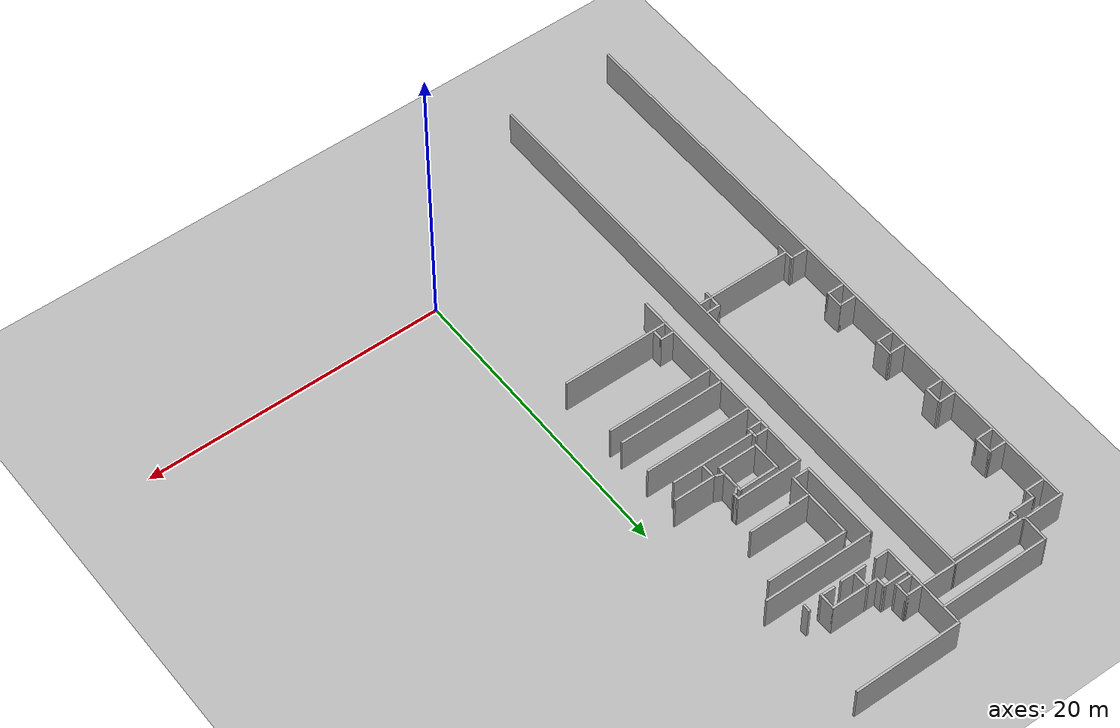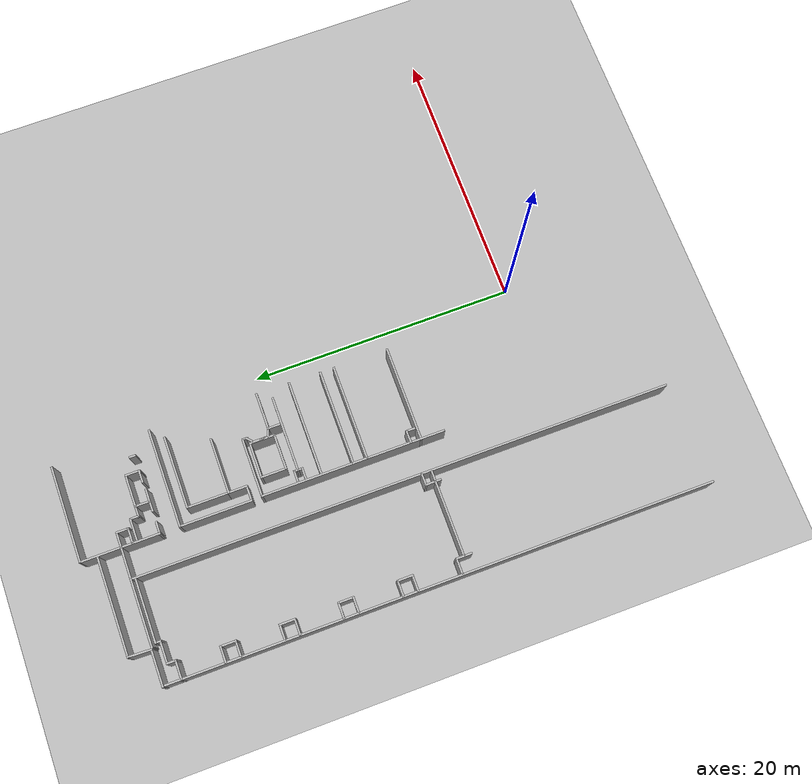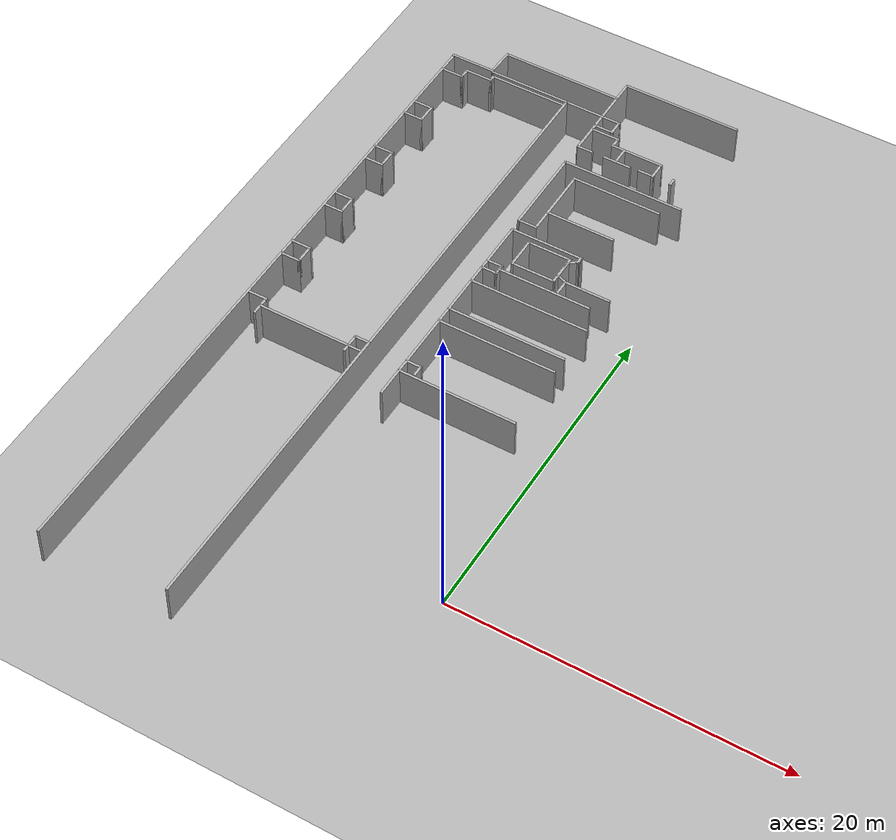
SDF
<sdf version="1.9">
 <world name="tsudanuma2-3">
  <model name="ground_plane">
   <static>true</static>
   <link name="link">
    <collision name="collision">
     <geometry><plane><normal>0 0 1</normal><size>100 100</size></plane></geometry>
     <surface>
      <contact><collide_bitmask>65535</collide_bitmask></contact>
      <friction><ode><mu>100</mu><mu2>50</mu2></ode></friction>
     </surface>
    </collision>
    <visual name="visual">
     <cast_shadows>false</cast_shadows>
     <geometry><plane><normal>0 0 1</normal><size>100 100</size></plane></geometry>
     <material>
      <ambient>0.5 0.5 0.5 1</ambient>
      <diffuse>0.7 0.7 0.7 1</diffuse>
      <specular>0.1 0.1 0.1 1</specular>
     </material>
    </visual>
   </link>
  </model>
  <model name="Tsudanuma_2-3-without_door">
   <pose>11.859500000000001 12.3796 0 0 0 0</pose>
   <link name="Wall_0">
    <collision name="Wall_0_Collision">
     <geometry><box><size>41.115000000000002 0.14999999999999999 2.5</size></box></geometry>
     <pose>0 0 1.25 0 0 0</pose>
    </collision>
    <visual name="Wall_0_Visual">
     <pose>0 0 1.25 0 0 0</pose>
     <geometry><box><size>41.115000000000002 0.14999999999999999 2.5</size></box></geometry>
     <material>
      <ambient>0.5 0.5 0.5 1</ambient>
      <diffuse>0.7 0.7 0.7 1</diffuse>
      <specular>0.1 0.1 0.1 1</specular>
     </material>
     <meta><layer>0</layer></meta>
    </visual>
    <pose>-30.8385 -0.074690000000000006 0 0 0 -1.5708</pose>
   </link>
   <link name="Wall_102">
    <collision name="Wall_102_Collision">
     <geometry><box><size>1.25 0.14999999999999999 2.5</size></box></geometry>
     <pose>0 0 1.25 0 0 0</pose>
    </collision>
    <visual name="Wall_102_Visual">
     <pose>0 0 1.25 0 0 0</pose>
     <geometry><box><size>1.25 0.14999999999999999 2.5</size></box></geometry>
     <material>
      <ambient>0.5 0.5 0.5 1</ambient>
      <diffuse>0.7 0.7 0.7 1</diffuse>
      <specular>0.1 0.1 0.1 1</specular>
     </material>
     <meta><layer>0</layer></meta>
    </visual>
    <pose>-20.270800000000001 10.816700000000001 0 0 0 0</pose>
   </link>
   <link name="Wall_103">
    <collision name="Wall_103_Collision">
     <geometry><box><size>1.5 0.14999999999999999 2.5</size></box></geometry>
     <pose>0 0 1.25 0 0 0</pose>
    </collision>
    <visual name="Wall_103_Visual">
     <pose>0 0 1.25 0 0 0</pose>
     <geometry><box><size>1.5 0.14999999999999999 2.5</size></box></geometry>
     <material>
      <ambient>0.5 0.5 0.5 1</ambient>
      <diffuse>0.7 0.7 0.7 1</diffuse>
      <specular>0.1 0.1 0.1 1</specular>
     </material>
     <meta><layer>0</layer></meta>
    </visual>
    <pose>-19.720800000000001 11.4917 0 0 0 1.5708</pose>
   </link>
   <link name="Wall_104">
    <collision name="Wall_104_Collision">
     <geometry><box><size>4.25 0.14999999999999999 2.5</size></box></geometry>
     <pose>0 0 1.25 0 0 0</pose>
    </collision>
    <visual name="Wall_104_Visual">
     <pose>0 0 1.25 0 0 0</pose>
     <geometry><box><size>4.25 0.14999999999999999 2.5</size></box></geometry>
     <material>
      <ambient>0.5 0.5 0.5 1</ambient>
      <diffuse>0.7 0.7 0.7 1</diffuse>
      <specular>0.1 0.1 0.1 1</specular>
     </material>
     <meta><layer>0</layer></meta>
    </visual>
    <pose>-17.6708 12.166700000000001 0 0 0 0</pose>
   </link>
   <link name="Wall_106">
    <collision name="Wall_106_Collision">
     <geometry><box><size>3.25 0.14999999999999999 2.5</size></box></geometry>
     <pose>0 0 1.25 0 0 0</pose>
    </collision>
    <visual name="Wall_106_Visual">
     <pose>0 0 1.25 0 0 0</pose>
     <geometry><box><size>3.25 0.14999999999999999 2.5</size></box></geometry>
     <material>
      <ambient>0.5 0.5 0.5 1</ambient>
      <diffuse>0.7 0.7 0.7 1</diffuse>
      <specular>0.1 0.1 0.1 1</specular>
     </material>
     <meta><layer>0</layer></meta>
    </visual>
    <pose>-19.720800000000001 13.716699999999999 0 0 0 1.5708</pose>
   </link>
   <link name="Wall_107">
    <collision name="Wall_107_Collision">
     <geometry><box><size>5.5 0.14999999999999999 2.5</size></box></geometry>
     <pose>0 0 1.25 0 0 0</pose>
    </collision>
    <visual name="Wall_107_Visual">
     <pose>0 0 1.25 0 0 0</pose>
     <geometry><box><size>5.5 0.14999999999999999 2.5</size></box></geometry>
     <material>
      <ambient>0.5 0.5 0.5 1</ambient>
      <diffuse>0.7 0.7 0.7 1</diffuse>
      <specular>0.1 0.1 0.1 1</specular>
     </material>
     <meta><layer>0</layer></meta>
    </visual>
    <pose>-17.0458 15.2667 0 0 0 0</pose>
   </link>
   <link name="Wall_114">
    <collision name="Wall_114_Collision">
     <geometry><box><size>7.5 0.14999999999999999 2.5</size></box></geometry>
     <pose>0 0 1.25 0 0 0</pose>
    </collision>
    <visual name="Wall_114_Visual">
     <pose>0 0 1.25 0 0 0</pose>
     <geometry><box><size>7.5 0.14999999999999999 2.5</size></box></geometry>
     <material>
      <ambient>0.5 0.5 0.5 1</ambient>
      <diffuse>0.7 0.7 0.7 1</diffuse>
      <specular>0.1 0.1 0.1 1</specular>
     </material>
     <meta><layer>0</layer></meta>
    </visual>
    <pose>-17.145800000000001 16.166699999999999 0 0 0 0</pose>
   </link>
   <link name="Wall_116">
    <collision name="Wall_116_Collision">
     <geometry><box><size>0.71550800000000003 0.14999999999999999 2.5</size></box></geometry>
     <pose>0 0 1.25 0 0 0</pose>
    </collision>
    <visual name="Wall_116_Visual">
     <pose>0 0 1.25 0 0 0</pose>
     <geometry><box><size>0.71550800000000003 0.14999999999999999 2.5</size></box></geometry>
     <material>
      <ambient>0.5 0.5 0.5 1</ambient>
      <diffuse>0.7 0.7 0.7 1</diffuse>
      <specular>0.1 0.1 0.1 1</specular>
     </material>
     <meta><layer>0</layer></meta>
    </visual>
    <pose>-16.6297 9.5424100000000003 0 0 0 0.73186499999999999</pose>
   </link>
   <link name="Wall_118">
    <collision name="Wall_118_Collision">
     <geometry><box><size>0.5 0.14999999999999999 2.5</size></box></geometry>
     <pose>0 0 1.25 0 0 0</pose>
    </collision>
    <visual name="Wall_118_Visual">
     <pose>0 0 1.25 0 0 0</pose>
     <geometry><box><size>0.5 0.14999999999999999 2.5</size></box></geometry>
     <material>
      <ambient>0.5 0.5 0.5 1</ambient>
      <diffuse>0.7 0.7 0.7 1</diffuse>
      <specular>0.1 0.1 0.1 1</specular>
     </material>
     <meta><layer>0</layer></meta>
    </visual>
    <pose>-16.4194 9.8491700000000009 0 0 0 1.5708</pose>
   </link>
   <link name="Wall_119">
    <collision name="Wall_119_Collision">
     <geometry><box><size>4.5 0.14999999999999999 2.5</size></box></geometry>
     <pose>0 0 1.25 0 0 0</pose>
    </collision>
    <visual name="Wall_119_Visual">
     <pose>0 0 1.25 0 0 0</pose>
     <geometry><box><size>4.5 0.14999999999999999 2.5</size></box></geometry>
     <material>
      <ambient>0.5 0.5 0.5 1</ambient>
      <diffuse>0.7 0.7 0.7 1</diffuse>
      <specular>0.1 0.1 0.1 1</specular>
     </material>
     <meta><layer>0</layer></meta>
    </visual>
    <pose>-18.5944 10.0242 0 0 0 3.1415899999999999</pose>
   </link>
   <link name="Wall_120">
    <collision name="Wall_120_Collision">
     <geometry><box><size>14 0.14999999999999999 2.5</size></box></geometry>
     <pose>0 0 1.25 0 0 0</pose>
    </collision>
    <visual name="Wall_120_Visual">
     <pose>0 0 1.25 0 0 0</pose>
     <geometry><box><size>14 0.14999999999999999 2.5</size></box></geometry>
     <material>
      <ambient>0.5 0.5 0.5 1</ambient>
      <diffuse>0.7 0.7 0.7 1</diffuse>
      <specular>0.1 0.1 0.1 1</specular>
     </material>
     <meta><layer>0</layer></meta>
    </visual>
    <pose>-20.769400000000001 3.09917 0 0 0 -1.5708</pose>
   </link>
   <link name="Wall_123">
    <collision name="Wall_123_Collision">
     <geometry><box><size>2.82925 0.14999999999999999 2.5</size></box></geometry>
     <pose>0 0 1.25 0 0 0</pose>
    </collision>
    <visual name="Wall_123_Visual">
     <pose>0 0 1.25 0 0 0</pose>
     <geometry><box><size>2.82925 0.14999999999999999 2.5</size></box></geometry>
     <material>
      <ambient>0.5 0.5 0.5 1</ambient>
      <diffuse>0.7 0.7 0.7 1</diffuse>
      <specular>0.1 0.1 0.1 1</specular>
     </material>
     <meta><layer>0</layer></meta>
    </visual>
    <pose>-14.9297 8.0241699999999998 0 0 0 -3.1415899999999999</pose>
   </link>
   <link name="Wall_124">
    <collision name="Wall_124_Collision">
     <geometry><box><size>0.76504799999999995 0.14999999999999999 2.5</size></box></geometry>
     <pose>0 0 1.25 0 0 0</pose>
    </collision>
    <visual name="Wall_124_Visual">
     <pose>0 0 1.25 0 0 0</pose>
     <geometry><box><size>0.76504799999999995 0.14999999999999999 2.5</size></box></geometry>
     <material>
      <ambient>0.5 0.5 0.5 1</ambient>
      <diffuse>0.7 0.7 0.7 1</diffuse>
      <specular>0.1 0.1 0.1 1</specular>
     </material>
     <meta><layer>0</layer></meta>
    </visual>
    <pose>-16.5547 8.1388200000000008 0 0 0 2.7595700000000001</pose>
   </link>
   <link name="Wall_128">
    <collision name="Wall_128_Collision">
     <geometry><box><size>1.25 0.14999999999999999 2.5</size></box></geometry>
     <pose>0 0 1.25 0 0 0</pose>
    </collision>
    <visual name="Wall_128_Visual">
     <pose>0 0 1.25 0 0 0</pose>
     <geometry><box><size>1.25 0.14999999999999999 2.5</size></box></geometry>
     <material>
      <ambient>0.5 0.5 0.5 1</ambient>
      <diffuse>0.7 0.7 0.7 1</diffuse>
      <specular>0.1 0.1 0.1 1</specular>
     </material>
     <meta><layer>0</layer></meta>
    </visual>
    <pose>-16.8401 8.8034599999999994 0 0 0 1.5708</pose>
   </link>
   <link name="Wall_130">
    <collision name="Wall_130_Collision">
     <geometry><box><size>7.25 0.14999999999999999 2.5</size></box></geometry>
     <pose>0 0 1.25 0 0 0</pose>
    </collision>
    <visual name="Wall_130_Visual">
     <pose>0 0 1.25 0 0 0</pose>
     <geometry><box><size>7.25 0.14999999999999999 2.5</size></box></geometry>
     <material>
      <ambient>0.5 0.5 0.5 1</ambient>
      <diffuse>0.7 0.7 0.7 1</diffuse>
      <specular>0.1 0.1 0.1 1</specular>
     </material>
     <meta><layer>0</layer></meta>
    </visual>
    <pose>-17.230499999999999 -2.0692699999999999 0 0 0 0</pose>
   </link>
   <link name="Wall_132">
    <collision name="Wall_132_Collision">
     <geometry><box><size>1 0.14999999999999999 2.5</size></box></geometry>
     <pose>0 0 1.25 0 0 0</pose>
    </collision>
    <visual name="Wall_132_Visual">
     <pose>0 0 1.25 0 0 0</pose>
     <geometry><box><size>1 0.14999999999999999 2.5</size></box></geometry>
     <material>
      <ambient>0.5 0.5 0.5 1</ambient>
      <diffuse>0.7 0.7 0.7 1</diffuse>
      <specular>0.1 0.1 0.1 1</specular>
     </material>
     <meta><layer>0</layer></meta>
    </visual>
    <pose>-20.317499999999999 -1.2914300000000001 0 0 0 0</pose>
   </link>
   <link name="Wall_133">
    <collision name="Wall_133_Collision">
     <geometry><box><size>0.75 0.14999999999999999 2.5</size></box></geometry>
     <pose>0 0 1.25 0 0 0</pose>
    </collision>
    <visual name="Wall_133_Visual">
     <pose>0 0 1.25 0 0 0</pose>
     <geometry><box><size>0.75 0.14999999999999999 2.5</size></box></geometry>
     <material>
      <ambient>0.5 0.5 0.5 1</ambient>
      <diffuse>0.7 0.7 0.7 1</diffuse>
      <specular>0.1 0.1 0.1 1</specular>
     </material>
     <meta><layer>0</layer></meta>
    </visual>
    <pose>-19.892499999999998 -1.5914299999999999 0 0 0 -1.5708</pose>
   </link>
   <link name="Wall_18">
    <collision name="Wall_18_Collision">
     <geometry><box><size>7.25 0.14999999999999999 2.5</size></box></geometry>
     <pose>0 0 1.25 0 0 0</pose>
    </collision>
    <visual name="Wall_18_Visual">
     <pose>0 0 1.25 0 0 0</pose>
     <geometry><box><size>7.25 0.14999999999999999 2.5</size></box></geometry>
     <material>
      <ambient>0.5 0.5 0.5 1</ambient>
      <diffuse>0.7 0.7 0.7 1</diffuse>
      <specular>0.1 0.1 0.1 1</specular>
     </material>
     <meta><layer>0</layer></meta>
    </visual>
    <pose>-17.222100000000001 23.510000000000002 0 0 0 3.1415899999999999</pose>
   </link>
   <link name="Wall_22">
    <collision name="Wall_22_Collision">
     <geometry><box><size>2.7999999999999998 0.14999999999999999 2.5</size></box></geometry>
     <pose>0 0 1.25 0 0 0</pose>
    </collision>
    <visual name="Wall_22_Visual">
     <pose>0 0 1.25 0 0 0</pose>
     <geometry><box><size>2.7999999999999998 0.14999999999999999 2.5</size></box></geometry>
     <material>
      <ambient>0.5 0.5 0.5 1</ambient>
      <diffuse>0.7 0.7 0.7 1</diffuse>
      <specular>0.1 0.1 0.1 1</specular>
     </material>
     <meta><layer>0</layer></meta>
    </visual>
    <pose>-29.553000000000001 20.584599999999998 0 0 0 3.1415899999999999</pose>
   </link>
   <link name="Wall_32">
    <collision name="Wall_32_Collision">
     <geometry><box><size>40.75 0.14999999999999999 2.5</size></box></geometry>
     <pose>0 0 1.25 0 0 0</pose>
    </collision>
    <visual name="Wall_32_Visual">
     <pose>0 0 1.25 0 0 0</pose>
     <geometry><box><size>40.75 0.14999999999999999 2.5</size></box></geometry>
     <material>
      <ambient>0.5 0.5 0.5 1</ambient>
      <diffuse>0.7 0.7 0.7 1</diffuse>
      <specular>0.1 0.1 0.1 1</specular>
     </material>
     <meta><layer>0</layer></meta>
    </visual>
    <pose>-23.1721 0.089962 0 0 0 1.5708</pose>
   </link>
   <link name="Wall_38">
    <collision name="Wall_38_Collision">
     <geometry><box><size>1 0.14999999999999999 2.5</size></box></geometry>
     <pose>0 0 1.25 0 0 0</pose>
    </collision>
    <visual name="Wall_38_Visual">
     <pose>0 0 1.25 0 0 0</pose>
     <geometry><box><size>1 0.14999999999999999 2.5</size></box></geometry>
     <material>
      <ambient>0.5 0.5 0.5 1</ambient>
      <diffuse>0.7 0.7 0.7 1</diffuse>
      <specular>0.1 0.1 0.1 1</specular>
     </material>
     <meta><layer>0</layer></meta>
    </visual>
    <pose>-20.3843 17.646999999999998 0 0 0 3.1415899999999999</pose>
   </link>
   <link name="Wall_39">
    <collision name="Wall_39_Collision">
     <geometry><box><size>3 0.14999999999999999 2.5</size></box></geometry>
     <pose>0 0 1.25 0 0 0</pose>
    </collision>
    <visual name="Wall_39_Visual">
     <pose>0 0 1.25 0 0 0</pose>
     <geometry><box><size>3 0.14999999999999999 2.5</size></box></geometry>
     <material>
      <ambient>0.5 0.5 0.5 1</ambient>
      <diffuse>0.7 0.7 0.7 1</diffuse>
      <specular>0.1 0.1 0.1 1</specular>
     </material>
     <meta><layer>0</layer></meta>
    </visual>
    <pose>-20.8093 19.071999999999999 0 0 0 1.5708</pose>
   </link>
   <link name="Wall_40">
    <collision name="Wall_40_Collision">
     <geometry><box><size>2.4953699999999999 0.14999999999999999 2.5</size></box></geometry>
     <pose>0 0 1.25 0 0 0</pose>
    </collision>
    <visual name="Wall_40_Visual">
     <pose>0 0 1.25 0 0 0</pose>
     <geometry><box><size>2.4953699999999999 0.14999999999999999 2.5</size></box></geometry>
     <material>
      <ambient>0.5 0.5 0.5 1</ambient>
      <diffuse>0.7 0.7 0.7 1</diffuse>
      <specular>0.1 0.1 0.1 1</specular>
     </material>
     <meta><layer>0</layer></meta>
    </visual>
    <pose>-21.9819 20.5016 0 0 0 3.1376400000000002</pose>
   </link>
   <link name="Wall_42">
    <collision name="Wall_42_Collision">
     <geometry><box><size>3.0499999999999998 0.14999999999999999 2.5</size></box></geometry>
     <pose>0 0 1.25 0 0 0</pose>
    </collision>
    <visual name="Wall_42_Visual">
     <pose>0 0 1.25 0 0 0</pose>
     <geometry><box><size>3.0499999999999998 0.14999999999999999 2.5</size></box></geometry>
     <material>
      <ambient>0.5 0.5 0.5 1</ambient>
      <diffuse>0.7 0.7 0.7 1</diffuse>
      <specular>0.1 0.1 0.1 1</specular>
     </material>
     <meta><layer>0</layer></meta>
    </visual>
    <pose>-20.8093 21.946999999999999 0 0 0 1.5708</pose>
   </link>
   <link name="Wall_44">
    <collision name="Wall_44_Collision">
     <geometry><box><size>1.75 0.14999999999999999 2.5</size></box></geometry>
     <pose>0 0 1.25 0 0 0</pose>
    </collision>
    <visual name="Wall_44_Visual">
     <pose>0 0 1.25 0 0 0</pose>
     <geometry><box><size>1.75 0.14999999999999999 2.5</size></box></geometry>
     <material>
      <ambient>0.5 0.5 0.5 1</ambient>
      <diffuse>0.7 0.7 0.7 1</diffuse>
      <specular>0.1 0.1 0.1 1</specular>
     </material>
     <meta><layer>0</layer></meta>
    </visual>
    <pose>-18.3034 17.646999999999998 0 0 0 0</pose>
   </link>
   <link name="Wall_470">
    <collision name="Wall_470_Collision">
     <geometry><box><size>1.25 0.14999999999999999 2.5</size></box></geometry>
     <pose>0 0 1.25 0 0 0</pose>
    </collision>
    <visual name="Wall_470_Visual">
     <pose>0 0 1.25 0 0 0</pose>
     <geometry><box><size>1.25 0.14999999999999999 2.5</size></box></geometry>
     <material>
      <ambient>0.5 0.5 0.5 1</ambient>
      <diffuse>0.7 0.7 0.7 1</diffuse>
      <specular>0.1 0.1 0.1 1</specular>
     </material>
     <meta><layer>0</layer></meta>
    </visual>
    <pose>-29.663499999999999 -1.9583999999999999 0 0 0 1.5708</pose>
   </link>
   <link name="Wall_471">
    <collision name="Wall_471_Collision">
     <geometry><box><size>1.25 0.14999999999999999 2.5</size></box></geometry>
     <pose>0 0 1.25 0 0 0</pose>
    </collision>
    <visual name="Wall_471_Visual">
     <pose>0 0 1.25 0 0 0</pose>
     <geometry><box><size>1.25 0.14999999999999999 2.5</size></box></geometry>
     <material>
      <ambient>0.5 0.5 0.5 1</ambient>
      <diffuse>0.7 0.7 0.7 1</diffuse>
      <specular>0.1 0.1 0.1 1</specular>
     </material>
     <meta><layer>0</layer></meta>
    </visual>
    <pose>-30.2135 -1.4084000000000001 0 0 0 3.1415899999999999</pose>
   </link>
   <link name="Wall_474">
    <collision name="Wall_474_Collision">
     <geometry><box><size>1.25 0.14999999999999999 2.5</size></box></geometry>
     <pose>0 0 1.25 0 0 0</pose>
    </collision>
    <visual name="Wall_474_Visual">
     <pose>0 0 1.25 0 0 0</pose>
     <geometry><box><size>1.25 0.14999999999999999 2.5</size></box></geometry>
     <material>
      <ambient>0.5 0.5 0.5 1</ambient>
      <diffuse>0.7 0.7 0.7 1</diffuse>
      <specular>0.1 0.1 0.1 1</specular>
     </material>
     <meta><layer>0</layer></meta>
    </visual>
    <pose>-30.229900000000001 1.90612 0 0 0 0</pose>
   </link>
   <link name="Wall_475">
    <collision name="Wall_475_Collision">
     <geometry><box><size>1.25 0.14999999999999999 2.5</size></box></geometry>
     <pose>0 0 1.25 0 0 0</pose>
    </collision>
    <visual name="Wall_475_Visual">
     <pose>0 0 1.25 0 0 0</pose>
     <geometry><box><size>1.25 0.14999999999999999 2.5</size></box></geometry>
     <material>
      <ambient>0.5 0.5 0.5 1</ambient>
      <diffuse>0.7 0.7 0.7 1</diffuse>
      <specular>0.1 0.1 0.1 1</specular>
     </material>
     <meta><layer>0</layer></meta>
    </visual>
    <pose>-29.6799 2.4561199999999999 0 0 0 1.5708</pose>
   </link>
   <link name="Wall_476">
    <collision name="Wall_476_Collision">
     <geometry><box><size>1.25 0.14999999999999999 2.5</size></box></geometry>
     <pose>0 0 1.25 0 0 0</pose>
    </collision>
    <visual name="Wall_476_Visual">
     <pose>0 0 1.25 0 0 0</pose>
     <geometry><box><size>1.25 0.14999999999999999 2.5</size></box></geometry>
     <material>
      <ambient>0.5 0.5 0.5 1</ambient>
      <diffuse>0.7 0.7 0.7 1</diffuse>
      <specular>0.1 0.1 0.1 1</specular>
     </material>
     <meta><layer>0</layer></meta>
    </visual>
    <pose>-30.229900000000001 3.0061200000000001 0 0 0 3.1415899999999999</pose>
   </link>
   <link name="Wall_478">
    <collision name="Wall_478_Collision">
     <geometry><box><size>1.25 0.14999999999999999 2.5</size></box></geometry>
     <pose>0 0 1.25 0 0 0</pose>
    </collision>
    <visual name="Wall_478_Visual">
     <pose>0 0 1.25 0 0 0</pose>
     <geometry><box><size>1.25 0.14999999999999999 2.5</size></box></geometry>
     <material>
      <ambient>0.5 0.5 0.5 1</ambient>
      <diffuse>0.7 0.7 0.7 1</diffuse>
      <specular>0.1 0.1 0.1 1</specular>
     </material>
     <meta><layer>0</layer></meta>
    </visual>
    <pose>-30.229900000000001 6.3041900000000002 0 0 0 0</pose>
   </link>
   <link name="Wall_479">
    <collision name="Wall_479_Collision">
     <geometry><box><size>1.25 0.14999999999999999 2.5</size></box></geometry>
     <pose>0 0 1.25 0 0 0</pose>
    </collision>
    <visual name="Wall_479_Visual">
     <pose>0 0 1.25 0 0 0</pose>
     <geometry><box><size>1.25 0.14999999999999999 2.5</size></box></geometry>
     <material>
      <ambient>0.5 0.5 0.5 1</ambient>
      <diffuse>0.7 0.7 0.7 1</diffuse>
      <specular>0.1 0.1 0.1 1</specular>
     </material>
     <meta><layer>0</layer></meta>
    </visual>
    <pose>-29.6799 6.85419 0 0 0 1.5708</pose>
   </link>
   <link name="Wall_480">
    <collision name="Wall_480_Collision">
     <geometry><box><size>1.25 0.14999999999999999 2.5</size></box></geometry>
     <pose>0 0 1.25 0 0 0</pose>
    </collision>
    <visual name="Wall_480_Visual">
     <pose>0 0 1.25 0 0 0</pose>
     <geometry><box><size>1.25 0.14999999999999999 2.5</size></box></geometry>
     <material>
      <ambient>0.5 0.5 0.5 1</ambient>
      <diffuse>0.7 0.7 0.7 1</diffuse>
      <specular>0.1 0.1 0.1 1</specular>
     </material>
     <meta><layer>0</layer></meta>
    </visual>
    <pose>-30.229900000000001 7.4041899999999998 0 0 0 3.1415899999999999</pose>
   </link>
   <link name="Wall_482">
    <collision name="Wall_482_Collision">
     <geometry><box><size>1.25 0.14999999999999999 2.5</size></box></geometry>
     <pose>0 0 1.25 0 0 0</pose>
    </collision>
    <visual name="Wall_482_Visual">
     <pose>0 0 1.25 0 0 0</pose>
     <geometry><box><size>1.25 0.14999999999999999 2.5</size></box></geometry>
     <material>
      <ambient>0.5 0.5 0.5 1</ambient>
      <diffuse>0.7 0.7 0.7 1</diffuse>
      <specular>0.1 0.1 0.1 1</specular>
     </material>
     <meta><layer>0</layer></meta>
    </visual>
    <pose>-30.238099999999999 10.620100000000001 0 0 0 0</pose>
   </link>
   <link name="Wall_483">
    <collision name="Wall_483_Collision">
     <geometry><box><size>1.25 0.14999999999999999 2.5</size></box></geometry>
     <pose>0 0 1.25 0 0 0</pose>
    </collision>
    <visual name="Wall_483_Visual">
     <pose>0 0 1.25 0 0 0</pose>
     <geometry><box><size>1.25 0.14999999999999999 2.5</size></box></geometry>
     <material>
      <ambient>0.5 0.5 0.5 1</ambient>
      <diffuse>0.7 0.7 0.7 1</diffuse>
      <specular>0.1 0.1 0.1 1</specular>
     </material>
     <meta><layer>0</layer></meta>
    </visual>
    <pose>-29.688099999999999 11.1701 0 0 0 1.5708</pose>
   </link>
   <link name="Wall_484">
    <collision name="Wall_484_Collision">
     <geometry><box><size>1.25 0.14999999999999999 2.5</size></box></geometry>
     <pose>0 0 1.25 0 0 0</pose>
    </collision>
    <visual name="Wall_484_Visual">
     <pose>0 0 1.25 0 0 0</pose>
     <geometry><box><size>1.25 0.14999999999999999 2.5</size></box></geometry>
     <material>
      <ambient>0.5 0.5 0.5 1</ambient>
      <diffuse>0.7 0.7 0.7 1</diffuse>
      <specular>0.1 0.1 0.1 1</specular>
     </material>
     <meta><layer>0</layer></meta>
    </visual>
    <pose>-30.238099999999999 11.7201 0 0 0 3.1415899999999999</pose>
   </link>
   <link name="Wall_486">
    <collision name="Wall_486_Collision">
     <geometry><box><size>1.25 0.14999999999999999 2.5</size></box></geometry>
     <pose>0 0 1.25 0 0 0</pose>
    </collision>
    <visual name="Wall_486_Visual">
     <pose>0 0 1.25 0 0 0</pose>
     <geometry><box><size>1.25 0.14999999999999999 2.5</size></box></geometry>
     <material>
      <ambient>0.5 0.5 0.5 1</ambient>
      <diffuse>0.7 0.7 0.7 1</diffuse>
      <specular>0.1 0.1 0.1 1</specular>
     </material>
     <meta><layer>0</layer></meta>
    </visual>
    <pose>-30.221699999999998 14.9359 0 0 0 0</pose>
   </link>
   <link name="Wall_487">
    <collision name="Wall_487_Collision">
     <geometry><box><size>1.25 0.14999999999999999 2.5</size></box></geometry>
     <pose>0 0 1.25 0 0 0</pose>
    </collision>
    <visual name="Wall_487_Visual">
     <pose>0 0 1.25 0 0 0</pose>
     <geometry><box><size>1.25 0.14999999999999999 2.5</size></box></geometry>
     <material>
      <ambient>0.5 0.5 0.5 1</ambient>
      <diffuse>0.7 0.7 0.7 1</diffuse>
      <specular>0.1 0.1 0.1 1</specular>
     </material>
     <meta><layer>0</layer></meta>
    </visual>
    <pose>-29.671700000000001 15.485900000000001 0 0 0 1.5708</pose>
   </link>
   <link name="Wall_488">
    <collision name="Wall_488_Collision">
     <geometry><box><size>1.25 0.14999999999999999 2.5</size></box></geometry>
     <pose>0 0 1.25 0 0 0</pose>
    </collision>
    <visual name="Wall_488_Visual">
     <pose>0 0 1.25 0 0 0</pose>
     <geometry><box><size>1.25 0.14999999999999999 2.5</size></box></geometry>
     <material>
      <ambient>0.5 0.5 0.5 1</ambient>
      <diffuse>0.7 0.7 0.7 1</diffuse>
      <specular>0.1 0.1 0.1 1</specular>
     </material>
     <meta><layer>0</layer></meta>
    </visual>
    <pose>-30.221699999999998 16.035900000000002 0 0 0 3.1415899999999999</pose>
   </link>
   <link name="Wall_49">
    <collision name="Wall_49_Collision">
     <geometry><box><size>1.75 0.14999999999999999 2.5</size></box></geometry>
     <pose>0 0 1.25 0 0 0</pose>
    </collision>
    <visual name="Wall_49_Visual">
     <pose>0 0 1.25 0 0 0</pose>
     <geometry><box><size>1.75 0.14999999999999999 2.5</size></box></geometry>
     <material>
      <ambient>0.5 0.5 0.5 1</ambient>
      <diffuse>0.7 0.7 0.7 1</diffuse>
      <specular>0.1 0.1 0.1 1</specular>
     </material>
     <meta><layer>0</layer></meta>
    </visual>
    <pose>-19.9221 19.302900000000001 0 0 0 0</pose>
   </link>
   <link name="Wall_490">
    <collision name="Wall_490_Collision">
     <geometry><box><size>1.5 0.14999999999999999 2.5</size></box></geometry>
     <pose>0 0 1.25 0 0 0</pose>
    </collision>
    <visual name="Wall_490_Visual">
     <pose>0 0 1.25 0 0 0</pose>
     <geometry><box><size>1.5 0.14999999999999999 2.5</size></box></geometry>
     <material>
      <ambient>0.5 0.5 0.5 1</ambient>
      <diffuse>0.7 0.7 0.7 1</diffuse>
      <specular>0.1 0.1 0.1 1</specular>
     </material>
     <meta><layer>0</layer></meta>
    </visual>
    <pose>-30.178899999999999 19.235299999999999 0 0 0 0</pose>
   </link>
   <link name="Wall_491">
    <collision name="Wall_491_Collision">
     <geometry><box><size>0.75 0.14999999999999999 2.5</size></box></geometry>
     <pose>0 0 1.25 0 0 0</pose>
    </collision>
    <visual name="Wall_491_Visual">
     <pose>0 0 1.25 0 0 0</pose>
     <geometry><box><size>0.75 0.14999999999999999 2.5</size></box></geometry>
     <material>
      <ambient>0.5 0.5 0.5 1</ambient>
      <diffuse>0.7 0.7 0.7 1</diffuse>
      <specular>0.1 0.1 0.1 1</specular>
     </material>
     <meta><layer>0</layer></meta>
    </visual>
    <pose>-29.503900000000002 19.535299999999999 0 0 0 1.5708</pose>
   </link>
   <link name="Wall_492">
    <collision name="Wall_492_Collision">
     <geometry><box><size>1.75 0.14999999999999999 2.5</size></box></geometry>
     <pose>0 0 1.25 0 0 0</pose>
    </collision>
    <visual name="Wall_492_Visual">
     <pose>0 0 1.25 0 0 0</pose>
     <geometry><box><size>1.75 0.14999999999999999 2.5</size></box></geometry>
     <material>
      <ambient>0.5 0.5 0.5 1</ambient>
      <diffuse>0.7 0.7 0.7 1</diffuse>
      <specular>0.1 0.1 0.1 1</specular>
     </material>
     <meta><layer>0</layer></meta>
    </visual>
    <pose>-28.703900000000001 19.8353 0 0 0 0</pose>
   </link>
   <link name="Wall_493">
    <collision name="Wall_493_Collision">
     <geometry><box><size>0.5 0.14999999999999999 2.5</size></box></geometry>
     <pose>0 0 1.25 0 0 0</pose>
    </collision>
    <visual name="Wall_493_Visual">
     <pose>0 0 1.25 0 0 0</pose>
     <geometry><box><size>0.5 0.14999999999999999 2.5</size></box></geometry>
     <material>
      <ambient>0.5 0.5 0.5 1</ambient>
      <diffuse>0.7 0.7 0.7 1</diffuse>
      <specular>0.1 0.1 0.1 1</specular>
     </material>
     <meta><layer>0</layer></meta>
    </visual>
    <pose>-27.9039 20.010300000000001 0 0 0 1.5708</pose>
   </link>
   <link name="Wall_494">
    <collision name="Wall_494_Collision">
     <geometry><box><size>4.75 0.14999999999999999 2.5</size></box></geometry>
     <pose>0 0 1.25 0 0 0</pose>
    </collision>
    <visual name="Wall_494_Visual">
     <pose>0 0 1.25 0 0 0</pose>
     <geometry><box><size>4.75 0.14999999999999999 2.5</size></box></geometry>
     <material>
      <ambient>0.5 0.5 0.5 1</ambient>
      <diffuse>0.7 0.7 0.7 1</diffuse>
      <specular>0.1 0.1 0.1 1</specular>
     </material>
     <meta><layer>0</layer></meta>
    </visual>
    <pose>-25.603899999999999 20.185300000000002 0 0 0 0</pose>
   </link>
   <link name="Wall_496">
    <collision name="Wall_496_Collision">
     <geometry><box><size>5.1109999999999998 0.14999999999999999 2.5</size></box></geometry>
     <pose>0 0 1.25 0 0 0</pose>
    </collision>
    <visual name="Wall_496_Visual">
     <pose>0 0 1.25 0 0 0</pose>
     <geometry><box><size>5.1109999999999998 0.14999999999999999 2.5</size></box></geometry>
     <material>
      <ambient>0.5 0.5 0.5 1</ambient>
      <diffuse>0.7 0.7 0.7 1</diffuse>
      <specular>0.1 0.1 0.1 1</specular>
     </material>
     <meta><layer>0</layer></meta>
    </visual>
    <pose>-25.6356 20.5062 0 0 0 3.1415899999999999</pose>
   </link>
   <link name="Wall_498">
    <collision name="Wall_498_Collision">
     <geometry><box><size>0.28616799999999998 0.14999999999999999 2.5</size></box></geometry>
     <pose>0 0 1.25 0 0 0</pose>
    </collision>
    <visual name="Wall_498_Visual">
     <pose>0 0 1.25 0 0 0</pose>
     <geometry><box><size>0.28616799999999998 0.14999999999999999 2.5</size></box></geometry>
     <material>
      <ambient>0.5 0.5 0.5 1</ambient>
      <diffuse>0.7 0.7 0.7 1</diffuse>
      <specular>0.1 0.1 0.1 1</specular>
     </material>
     <meta><layer>0</layer></meta>
    </visual>
    <pose>-28.1723 20.545400000000001 0 0 0 2.5284200000000001</pose>
   </link>
   <link name="Wall_50">
    <collision name="Wall_50_Collision">
     <geometry><box><size>0.75 0.14999999999999999 2.5</size></box></geometry>
     <pose>0 0 1.25 0 0 0</pose>
    </collision>
    <visual name="Wall_50_Visual">
     <pose>0 0 1.25 0 0 0</pose>
     <geometry><box><size>0.75 0.14999999999999999 2.5</size></box></geometry>
     <material>
      <ambient>0.5 0.5 0.5 1</ambient>
      <diffuse>0.7 0.7 0.7 1</diffuse>
      <specular>0.1 0.1 0.1 1</specular>
     </material>
     <meta><layer>0</layer></meta>
    </visual>
    <pose>-19.1221 19.0029 0 0 0 -1.5708</pose>
   </link>
   <link name="Wall_503">
    <collision name="Wall_503_Collision">
     <geometry><box><size>1 0.14999999999999999 2.5</size></box></geometry>
     <pose>0 0 1.25 0 0 0</pose>
    </collision>
    <visual name="Wall_503_Visual">
     <pose>0 0 1.25 0 0 0</pose>
     <geometry><box><size>1 0.14999999999999999 2.5</size></box></geometry>
     <material>
      <ambient>0.5 0.5 0.5 1</ambient>
      <diffuse>0.7 0.7 0.7 1</diffuse>
      <specular>0.1 0.1 0.1 1</specular>
     </material>
     <meta><layer>0</layer></meta>
    </visual>
    <pose>-23.6051 -1.22621 0 0 0 3.1415899999999999</pose>
   </link>
   <link name="Wall_504">
    <collision name="Wall_504_Collision">
     <geometry><box><size>1.25 0.14999999999999999 2.5</size></box></geometry>
     <pose>0 0 1.25 0 0 0</pose>
    </collision>
    <visual name="Wall_504_Visual">
     <pose>0 0 1.25 0 0 0</pose>
     <geometry><box><size>1.25 0.14999999999999999 2.5</size></box></geometry>
     <material>
      <ambient>0.5 0.5 0.5 1</ambient>
      <diffuse>0.7 0.7 0.7 1</diffuse>
      <specular>0.1 0.1 0.1 1</specular>
     </material>
     <meta><layer>0</layer></meta>
    </visual>
    <pose>-24.030100000000001 -1.7762100000000001 0 0 0 -1.5708</pose>
   </link>
   <link name="Wall_508">
    <collision name="Wall_508_Collision">
     <geometry><box><size>7.5 0.14999999999999999 2.5</size></box></geometry>
     <pose>0 0 1.25 0 0 0</pose>
    </collision>
    <visual name="Wall_508_Visual">
     <pose>0 0 1.25 0 0 0</pose>
     <geometry><box><size>7.5 0.14999999999999999 2.5</size></box></geometry>
     <material>
      <ambient>0.5 0.5 0.5 1</ambient>
      <diffuse>0.7 0.7 0.7 1</diffuse>
      <specular>0.1 0.1 0.1 1</specular>
     </material>
     <meta><layer>0</layer></meta>
    </visual>
    <pose>-24.487500000000001 22.255700000000001 0 0 0 3.1415899999999999</pose>
   </link>
   <link name="Wall_509">
    <collision name="Wall_509_Collision">
     <geometry><box><size>1.8223499999999999 0.14999999999999999 2.5</size></box></geometry>
     <pose>0 0 1.25 0 0 0</pose>
    </collision>
    <visual name="Wall_509_Visual">
     <pose>0 0 1.25 0 0 0</pose>
     <geometry><box><size>1.8223499999999999 0.14999999999999999 2.5</size></box></geometry>
     <material>
      <ambient>0.5 0.5 0.5 1</ambient>
      <diffuse>0.7 0.7 0.7 1</diffuse>
      <specular>0.1 0.1 0.1 1</specular>
     </material>
     <meta><layer>0</layer></meta>
    </visual>
    <pose>-28.1953 21.420100000000001 0 0 0 -1.60995</pose>
   </link>
   <link name="Wall_51">
    <collision name="Wall_51_Collision">
     <geometry><box><size>3.25 0.14999999999999999 2.5</size></box></geometry>
     <pose>0 0 1.25 0 0 0</pose>
    </collision>
    <visual name="Wall_51_Visual">
     <pose>0 0 1.25 0 0 0</pose>
     <geometry><box><size>3.25 0.14999999999999999 2.5</size></box></geometry>
     <material>
      <ambient>0.5 0.5 0.5 1</ambient>
      <diffuse>0.7 0.7 0.7 1</diffuse>
      <specular>0.1 0.1 0.1 1</specular>
     </material>
     <meta><layer>0</layer></meta>
    </visual>
    <pose>-17.572099999999999 18.7029 0 0 0 0</pose>
   </link>
   <link name="Wall_511">
    <collision name="Wall_511_Collision">
     <geometry><box><size>7.25 0.14999999999999999 2.5</size></box></geometry>
     <pose>0 0 1.25 0 0 0</pose>
    </collision>
    <visual name="Wall_511_Visual">
     <pose>0 0 1.25 0 0 0</pose>
     <geometry><box><size>7.25 0.14999999999999999 2.5</size></box></geometry>
     <material>
      <ambient>0.5 0.5 0.5 1</ambient>
      <diffuse>0.7 0.7 0.7 1</diffuse>
      <specular>0.1 0.1 0.1 1</specular>
     </material>
     <meta><layer>0</layer></meta>
    </visual>
    <pose>-17.203800000000001 3.1189800000000001 0 0 0 0</pose>
   </link>
   <link name="Wall_513">
    <collision name="Wall_513_Collision">
     <geometry><box><size>7.25 0.14999999999999999 2.5</size></box></geometry>
     <pose>0 0 1.25 0 0 0</pose>
    </collision>
    <visual name="Wall_513_Visual">
     <pose>0 0 1.25 0 0 0</pose>
     <geometry><box><size>7.25 0.14999999999999999 2.5</size></box></geometry>
     <material>
      <ambient>0.5 0.5 0.5 1</ambient>
      <diffuse>0.7 0.7 0.7 1</diffuse>
      <specular>0.1 0.1 0.1 1</specular>
     </material>
     <meta><layer>0</layer></meta>
    </visual>
    <pose>-17.203800000000001 2.0723699999999998 0 0 0 0</pose>
   </link>
   <link name="Wall_515">
    <collision name="Wall_515_Collision">
     <geometry><box><size>7.25 0.14999999999999999 2.5</size></box></geometry>
     <pose>0 0 1.25 0 0 0</pose>
    </collision>
    <visual name="Wall_515_Visual">
     <pose>0 0 1.25 0 0 0</pose>
     <geometry><box><size>7.25 0.14999999999999999 2.5</size></box></geometry>
     <material>
      <ambient>0.5 0.5 0.5 1</ambient>
      <diffuse>0.7 0.7 0.7 1</diffuse>
      <specular>0.1 0.1 0.1 1</specular>
     </material>
     <meta><layer>0</layer></meta>
    </visual>
    <pose>-17.174399999999999 5.5217700000000001 0 0 0 0</pose>
   </link>
   <link name="Wall_517">
    <collision name="Wall_517_Collision">
     <geometry><box><size>5.75 0.14999999999999999 2.5</size></box></geometry>
     <pose>0 0 1.25 0 0 0</pose>
    </collision>
    <visual name="Wall_517_Visual">
     <pose>0 0 1.25 0 0 0</pose>
     <geometry><box><size>5.75 0.14999999999999999 2.5</size></box></geometry>
     <material>
      <ambient>0.5 0.5 0.5 1</ambient>
      <diffuse>0.7 0.7 0.7 1</diffuse>
      <specular>0.1 0.1 0.1 1</specular>
     </material>
     <meta><layer>0</layer></meta>
    </visual>
    <pose>-17.084099999999999 7.0106099999999998 0 0 0 0</pose>
   </link>
   <link name="Wall_519">
    <collision name="Wall_519_Collision">
     <geometry><box><size>1 0.14999999999999999 2.5</size></box></geometry>
     <pose>0 0 1.25 0 0 0</pose>
    </collision>
    <visual name="Wall_519_Visual">
     <pose>0 0 1.25 0 0 0</pose>
     <geometry><box><size>1 0.14999999999999999 2.5</size></box></geometry>
     <material>
      <ambient>0.5 0.5 0.5 1</ambient>
      <diffuse>0.7 0.7 0.7 1</diffuse>
      <specular>0.1 0.1 0.1 1</specular>
     </material>
     <meta><layer>0</layer></meta>
    </visual>
    <pose>-20.299399999999999 7.2759499999999999 0 0 0 0</pose>
   </link>
   <link name="Wall_52">
    <collision name="Wall_52_Collision">
     <geometry><box><size>1.1674500000000001 0.14999999999999999 2.5</size></box></geometry>
     <pose>0 0 1.25 0 0 0</pose>
    </collision>
    <visual name="Wall_52_Visual">
     <pose>0 0 1.25 0 0 0</pose>
     <geometry><box><size>1.1674500000000001 0.14999999999999999 2.5</size></box></geometry>
     <material>
      <ambient>0.5 0.5 0.5 1</ambient>
      <diffuse>0.7 0.7 0.7 1</diffuse>
      <specular>0.1 0.1 0.1 1</specular>
     </material>
     <meta><layer>0</layer></meta>
    </visual>
    <pose>-16.022099999999998 18.194099999999999 0 0 0 -1.5708</pose>
   </link>
   <link name="Wall_520">
    <collision name="Wall_520_Collision">
     <geometry><box><size>0.75 0.14999999999999999 2.5</size></box></geometry>
     <pose>0 0 1.25 0 0 0</pose>
    </collision>
    <visual name="Wall_520_Visual">
     <pose>0 0 1.25 0 0 0</pose>
     <geometry><box><size>0.75 0.14999999999999999 2.5</size></box></geometry>
     <material>
      <ambient>0.5 0.5 0.5 1</ambient>
      <diffuse>0.7 0.7 0.7 1</diffuse>
      <specular>0.1 0.1 0.1 1</specular>
     </material>
     <meta><layer>0</layer></meta>
    </visual>
    <pose>-19.874300000000002 6.9759500000000001 0 0 0 -1.5708</pose>
   </link>
   <link name="Wall_521">
    <collision name="Wall_521_Collision">
     <geometry><box><size>1 0.14999999999999999 2.5</size></box></geometry>
     <pose>0 0 1.25 0 0 0</pose>
    </collision>
    <visual name="Wall_521_Visual">
     <pose>0 0 1.25 0 0 0</pose>
     <geometry><box><size>1 0.14999999999999999 2.5</size></box></geometry>
     <material>
      <ambient>0.5 0.5 0.5 1</ambient>
      <diffuse>0.7 0.7 0.7 1</diffuse>
      <specular>0.1 0.1 0.1 1</specular>
     </material>
     <meta><layer>0</layer></meta>
    </visual>
    <pose>-20.299399999999999 6.6759500000000003 0 0 0 3.1415899999999999</pose>
   </link>
   <link name="Wall_53">
    <collision name="Wall_53_Collision">
     <geometry><box><size>1 0.14999999999999999 2.5</size></box></geometry>
     <pose>0 0 1.25 0 0 0</pose>
    </collision>
    <visual name="Wall_53_Visual">
     <pose>0 0 1.25 0 0 0</pose>
     <geometry><box><size>1 0.14999999999999999 2.5</size></box></geometry>
     <material>
      <ambient>0.5 0.5 0.5 1</ambient>
      <diffuse>0.7 0.7 0.7 1</diffuse>
      <specular>0.1 0.1 0.1 1</specular>
     </material>
     <meta><layer>0</layer></meta>
    </visual>
    <pose>-16.447099999999999 17.704000000000001 0 0 0 3.1415899999999999</pose>
   </link>
   <link name="Wall_530">
    <collision name="Wall_530_Collision">
     <geometry><box><size>2 0.14999999999999999 2.5</size></box></geometry>
     <pose>0 0 1.25 0 0 0</pose>
    </collision>
    <visual name="Wall_530_Visual">
     <pose>0 0 1.25 0 0 0</pose>
     <geometry><box><size>2 0.14999999999999999 2.5</size></box></geometry>
     <material>
      <ambient>0.5 0.5 0.5 1</ambient>
      <diffuse>0.7 0.7 0.7 1</diffuse>
      <specular>0.1 0.1 0.1 1</specular>
     </material>
     <meta><layer>0</layer></meta>
    </visual>
    <pose>-16.880800000000001 8.6989999999999998 0 0 0 -1.5708</pose>
   </link>
   <link name="Wall_532">
    <collision name="Wall_532_Collision">
     <geometry><box><size>2.75 0.14999999999999999 2.5</size></box></geometry>
     <pose>0 0 1.25 0 0 0</pose>
    </collision>
    <visual name="Wall_532_Visual">
     <pose>0 0 1.25 0 0 0</pose>
     <geometry><box><size>2.75 0.14999999999999999 2.5</size></box></geometry>
     <material>
      <ambient>0.5 0.5 0.5 1</ambient>
      <diffuse>0.7 0.7 0.7 1</diffuse>
      <specular>0.1 0.1 0.1 1</specular>
     </material>
     <meta><layer>0</layer></meta>
    </visual>
    <pose>-18.180800000000001 9.6240000000000006 0 0 0 3.1415899999999999</pose>
   </link>
   <link name="Wall_533">
    <collision name="Wall_533_Collision">
     <geometry><box><size>2 0.14999999999999999 2.5</size></box></geometry>
     <pose>0 0 1.25 0 0 0</pose>
    </collision>
    <visual name="Wall_533_Visual">
     <pose>0 0 1.25 0 0 0</pose>
     <geometry><box><size>2 0.14999999999999999 2.5</size></box></geometry>
     <material>
      <ambient>0.5 0.5 0.5 1</ambient>
      <diffuse>0.7 0.7 0.7 1</diffuse>
      <specular>0.1 0.1 0.1 1</specular>
     </material>
     <meta><layer>0</layer></meta>
    </visual>
    <pose>-19.480799999999999 8.6989999999999998 0 0 0 -1.5708</pose>
   </link>
   <link name="Wall_534">
    <collision name="Wall_534_Collision">
     <geometry><box><size>2.75 0.14999999999999999 2.5</size></box></geometry>
     <pose>0 0 1.25 0 0 0</pose>
    </collision>
    <visual name="Wall_534_Visual">
     <pose>0 0 1.25 0 0 0</pose>
     <geometry><box><size>2.75 0.14999999999999999 2.5</size></box></geometry>
     <material>
      <ambient>0.5 0.5 0.5 1</ambient>
      <diffuse>0.7 0.7 0.7 1</diffuse>
      <specular>0.1 0.1 0.1 1</specular>
     </material>
     <meta><layer>0</layer></meta>
    </visual>
    <pose>-18.180800000000001 7.774 0 0 0 0</pose>
   </link>
   <link name="Wall_537">
    <collision name="Wall_537_Collision">
     <geometry><box><size>1 0.14999999999999999 2.5</size></box></geometry>
     <pose>0 0 1.25 0 0 0</pose>
    </collision>
    <visual name="Wall_537_Visual">
     <pose>0 0 1.25 0 0 0</pose>
     <geometry><box><size>1 0.14999999999999999 2.5</size></box></geometry>
     <material>
      <ambient>0.5 0.5 0.5 1</ambient>
      <diffuse>0.7 0.7 0.7 1</diffuse>
      <specular>0.1 0.1 0.1 1</specular>
     </material>
     <meta><layer>0</layer></meta>
    </visual>
    <pose>-16.269400000000001 7.59917 0 0 0 -1.5708</pose>
   </link>
   <link name="Wall_55">
    <collision name="Wall_55_Collision">
     <geometry><box><size>1.2 0.14999999999999999 2.5</size></box></geometry>
     <pose>0 0 1.25 0 0 0</pose>
    </collision>
    <visual name="Wall_55_Visual">
     <pose>0 0 1.25 0 0 0</pose>
     <geometry><box><size>1.2 0.14999999999999999 2.5</size></box></geometry>
     <material>
      <ambient>0.5 0.5 0.5 1</ambient>
      <diffuse>0.7 0.7 0.7 1</diffuse>
      <specular>0.1 0.1 0.1 1</specular>
     </material>
     <meta><layer>0</layer></meta>
    </visual>
    <pose>-18.377800000000001 18.1814 0 0 0 1.5708</pose>
   </link>
   <link name="Wall_57">
    <collision name="Wall_57_Collision">
     <geometry><box><size>1.25 0.14999999999999999 2.5</size></box></geometry>
     <pose>0 0 1.25 0 0 0</pose>
    </collision>
    <visual name="Wall_57_Visual">
     <pose>0 0 1.25 0 0 0</pose>
     <geometry><box><size>1.25 0.14999999999999999 2.5</size></box></geometry>
     <material>
      <ambient>0.5 0.5 0.5 1</ambient>
      <diffuse>0.7 0.7 0.7 1</diffuse>
      <specular>0.1 0.1 0.1 1</specular>
     </material>
     <meta><layer>0</layer></meta>
    </visual>
    <pose>-20.2593 20.497 0 0 0 0</pose>
   </link>
   <link name="Wall_58">
    <collision name="Wall_58_Collision">
     <geometry><box><size>1 0.14999999999999999 2.5</size></box></geometry>
     <pose>0 0 1.25 0 0 0</pose>
    </collision>
    <visual name="Wall_58_Visual">
     <pose>0 0 1.25 0 0 0</pose>
     <geometry><box><size>1 0.14999999999999999 2.5</size></box></geometry>
     <material>
      <ambient>0.5 0.5 0.5 1</ambient>
      <diffuse>0.7 0.7 0.7 1</diffuse>
      <specular>0.1 0.1 0.1 1</specular>
     </material>
     <meta><layer>0</layer></meta>
    </visual>
    <pose>-19.709299999999999 20.071999999999999 0 0 0 -1.5708</pose>
   </link>
   <link name="Wall_59">
    <collision name="Wall_59_Collision">
     <geometry><box><size>1.25 0.14999999999999999 2.5</size></box></geometry>
     <pose>0 0 1.25 0 0 0</pose>
    </collision>
    <visual name="Wall_59_Visual">
     <pose>0 0 1.25 0 0 0</pose>
     <geometry><box><size>1.25 0.14999999999999999 2.5</size></box></geometry>
     <material>
      <ambient>0.5 0.5 0.5 1</ambient>
      <diffuse>0.7 0.7 0.7 1</diffuse>
      <specular>0.1 0.1 0.1 1</specular>
     </material>
     <meta><layer>0</layer></meta>
    </visual>
    <pose>-20.2593 19.646999999999998 0 0 0 3.1415899999999999</pose>
   </link>
   <link name="Wall_62">
    <collision name="Wall_62_Collision">
     <geometry><box><size>0.5 0.14999999999999999 2.5</size></box></geometry>
     <pose>0 0 1.25 0 0 0</pose>
    </collision>
    <visual name="Wall_62_Visual">
     <pose>0 0 1.25 0 0 0</pose>
     <geometry><box><size>0.5 0.14999999999999999 2.5</size></box></geometry>
     <material>
      <ambient>0.5 0.5 0.5 1</ambient>
      <diffuse>0.7 0.7 0.7 1</diffuse>
      <specular>0.1 0.1 0.1 1</specular>
     </material>
     <meta><layer>0</layer></meta>
    </visual>
    <pose>-14.8613 17.844100000000001 0 0 0 -1.5708</pose>
   </link>
   <link name="Wall_97">
    <collision name="Wall_97_Collision">
     <geometry><box><size>6.5 0.14999999999999999 2.5</size></box></geometry>
     <pose>0 0 1.25 0 0 0</pose>
    </collision>
    <visual name="Wall_97_Visual">
     <pose>0 0 1.25 0 0 0</pose>
     <geometry><box><size>6.5 0.14999999999999999 2.5</size></box></geometry>
     <material>
      <ambient>0.5 0.5 0.5 1</ambient>
      <diffuse>0.7 0.7 0.7 1</diffuse>
      <specular>0.1 0.1 0.1 1</specular>
     </material>
     <meta><layer>0</layer></meta>
    </visual>
    <pose>-26.447299999999998 -1.9599500000000001 0 0 0 0</pose>
   </link>
   <link name="Wall_99">
    <collision name="Wall_99_Collision">
     <geometry><box><size>5.5 0.14999999999999999 2.5</size></box></geometry>
     <pose>0 0 1.25 0 0 0</pose>
    </collision>
    <visual name="Wall_99_Visual">
     <pose>0 0 1.25 0 0 0</pose>
     <geometry><box><size>5.5 0.14999999999999999 2.5</size></box></geometry>
     <material>
      <ambient>0.5 0.5 0.5 1</ambient>
      <diffuse>0.7 0.7 0.7 1</diffuse>
      <specular>0.1 0.1 0.1 1</specular>
     </material>
     <meta><layer>0</layer></meta>
    </visual>
    <pose>-20.820799999999998 13.4917 0 0 0 -1.5708</pose>
   </link>
   <static>true</static>
  </model>
 </world>
</sdf>
